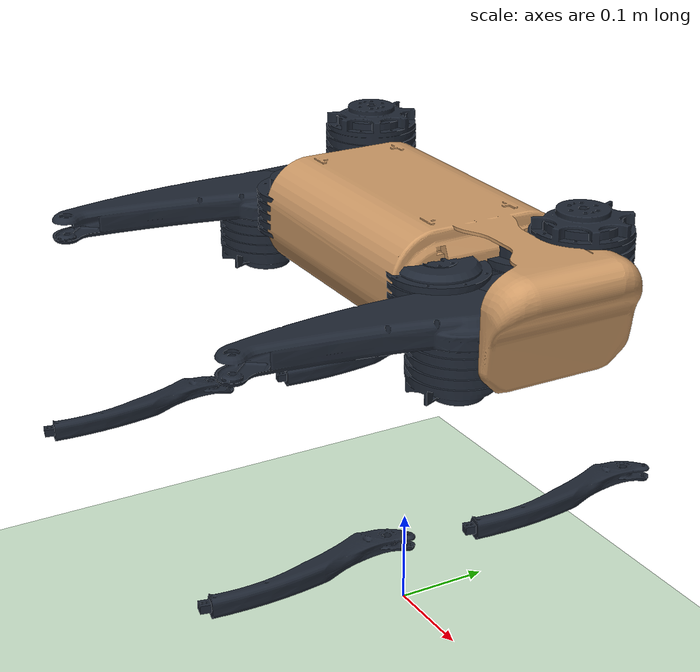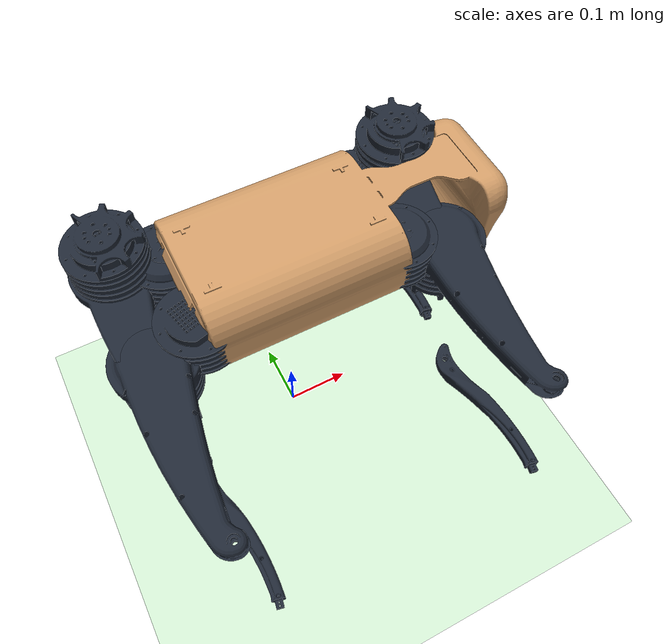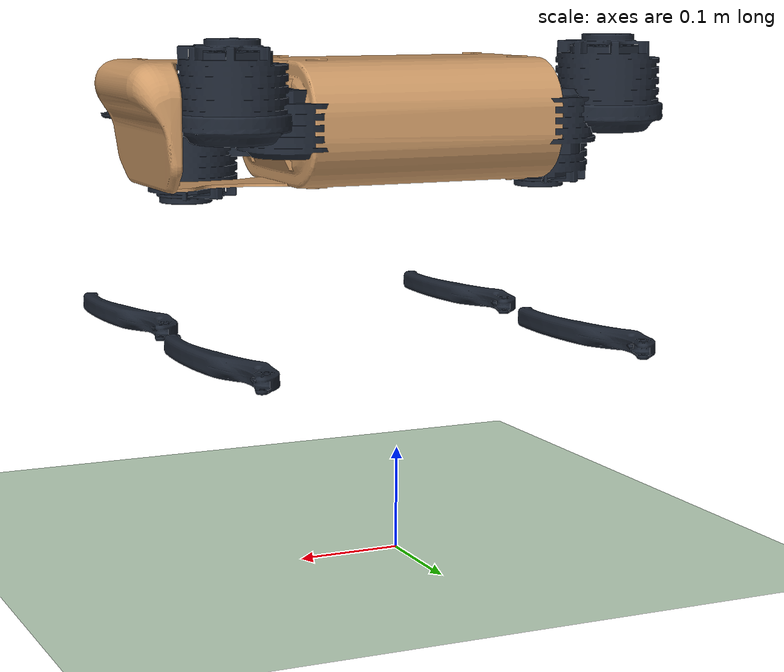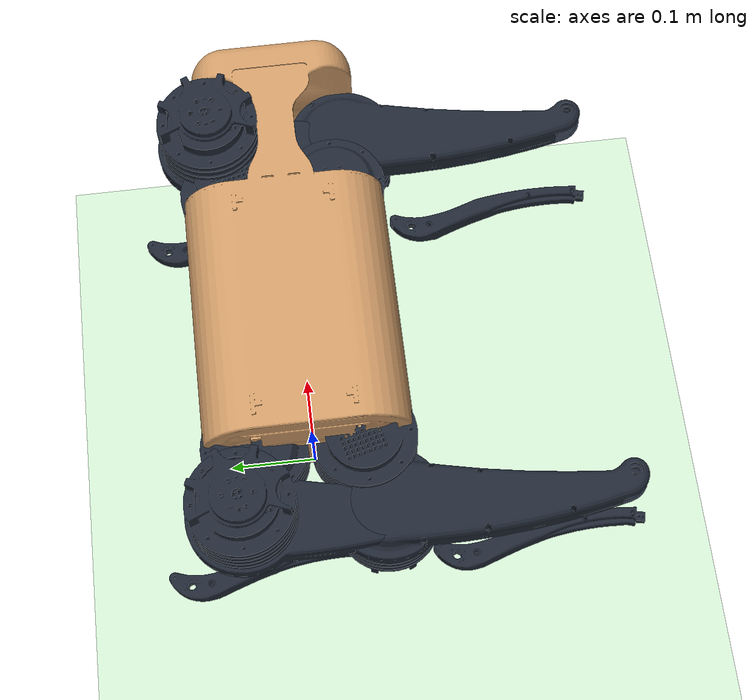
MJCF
<mujoco model="legs">
    <compiler angle="radian" coordinate="local" inertiafromgeom="true" meshdir="/home/mehtimans/sim2sim_leggedgym/resources/robots/iust/mjcf/assets" />
        <option timestep='0.005' iterations='30' solver='PGS' gravity='0 0 -9.81' integrator="RK4">
        </option>
        <size njmax="500" nconmax="100" />
        <default>
            <joint armature="0.0" damping="0.0" limited="true"/>
            <geom conaffinity="0" condim="3" density="1" friction="1 0.5 0.5" margin="0.01" rgba="0.8 0.6 0.4 1"/>
        </default>
    <asset>
        <mesh name="trunk" file="trunk.obj" />
        <mesh name="hip" file="hip.obj" />
        <mesh name="thigh_mirror" file="thigh_mirror.obj" />
        <mesh name="calf" file="calf.obj" />
        <mesh name="thigh" file="thigh.obj" />

        <texture builtin="gradient" height="100" rgb1="1 1 1" rgb2="0 0 0" type="skybox" width="100"/>
        <texture builtin="flat" height="1278" mark="cross" markrgb="1 1 1" name="texgeom" random="0.01" rgb1="0.8 0.6 0.4" rgb2="0.8 0.6 0.4" type="cube" width="127"/>
        <texture builtin="checker" height="100" name="texplane" rgb1="0 0 0" rgb2="0.8 0.8 0.8" type="2d" width="100"/>
        <material name="MatPlane" reflectance="0.5" shininess="1" specular="1" texrepeat="60 60" texture="texplane"/>
        <material name="geom" texture="texgeom" texuniform="true"/>

    </asset>
    <worldbody>

        <light cutoff="100" diffuse="1 1 1" dir="-0 0 -1.3" directional="true" exponent="1" pos="0 0 1.3" specular=".1 .1 .1"/>
        <geom conaffinity="1" group="1" condim="3" material="MatPlane" name="floor" pos="0 0 0" rgba="0.8 0.9 0.8 1" size="40 40 40" type="plane"/>

        <body name="base" pos="0.0 0.0 0.42">
            <joint type="free" name="floating_base"/>
            <geom type="mesh" mesh="trunk" group="1"/>

            <inertial pos="0 0 0" mass="4.713" diaginertia="0.01683993 0.056579028 0.064713601" />

            <site name='imu' size='0.01' pos='0.0 0 0.0'/>
            <body name="FR_hip" pos="0.13 -0.05 0">
                <inertial pos="-0.003311 -0.000635 3.1e-05" quat="0.475134 0.521822 -0.477036 0.523818" mass="0.696" diaginertia="0.000469246 0.00080749 0.000552929" />
                <joint name="FR_hip_joint" pos="0 0 0" axis="1 0 0" limited="true" range="-0.802851 0.802851" />
                <geom quat="0 1 0 0" type="mesh" group="1" mesh="hip" rgba="0.12 0.15 0.2 1"/>

                <body name="FR_thigh" pos="0.06 -0.015 0">
                    <inertial pos="-0.003237 0.022327 -0.027326" quat="0.999125 -0.00256393 -0.0409531 -0.00806091" mass="1.013" diaginertia="0.005529065 0.005139339 0.001367788" />
                    <joint name="FR_thigh_joint" pos="0 0 0" axis="0 1 0" limited="true" range="-1.0472 4.18879" />
                    <geom type="mesh" group="1" rgba="0.12 0.15 0.2 1" mesh="thigh_mirror" />

                    <body name="FR_calf" pos="0 -0.07125 -0.21183">
                        <inertial pos="0.006435 0.0 -0.107388" quat="0.706906 0.0168526 0.0168526 0.706906" mass="0.166" diaginertia="0.002997972 0.003014022 3.2426e-05" />
                        <joint name="FR_calf_joint" pos="0 0 0" axis="0 1 0" limited="true" range="-2.69653 -0.916298" />
                        <geom type="mesh" group="1" rgba="0.12 0.15 0.2 1" mesh="calf" />
                    </body>
                </body>
            </body>
            <body name="FL_hip" pos="0.13 0.05 0">
                <inertial pos="-0.003311 0.000635 3.1e-05" quat="0.415693 0.415059 0.572494 0.571993" mass="0.696" diaginertia="0.000469246 0.00080749 0.000552929" />
                <joint name="FL_hip_joint" pos="0 0 0" axis="1 0 0" limited="true" range="-0.802851 0.802851" />
                <geom type="mesh" group="1" rgba="0.12 0.15 0.2 1" mesh="hip" />
                <body name="FL_thigh" pos="0.06 0.015 0">
                    <inertial pos="-0.003237 -0.022327 -0.027326" quat="0.999125 0.00256393 -0.0409531 0.00806091" mass="1.013" diaginertia="0.005529065 0.005139339 0.001367788" />
                    <joint name="FL_thigh_joint" pos="0 0 0" axis="0 1 0" limited="true" range="-1.0472 4.18879" />
                    <geom type="mesh" group="1" rgba="0.12 0.15 0.2 1" mesh="thigh" />
                    <body name="FL_calf" pos="0 0.07125 -0.21183">
                        <inertial pos="0.006435 0.0 -0.107388" quat="0.706906 0.0168526 0.0168526 0.706906" mass="0.166" diaginertia="0.002997972 0.003014022 3.2426e-05" />
                        <joint name="FL_calf_joint" pos="0 0 0" axis="0 1 0" limited="true" range="-2.69653 -0.916298" />
                        <geom type="mesh" group="1" rgba="0.12 0.15 0.2 1" mesh="calf" />
                    </body>
                </body>
            </body>
            <body name="RR_hip" pos="-0.13 -0.05 0">
                <inertial pos="0.003311 -0.000635 3.1e-05" quat="0.415059 0.415693 0.571993 0.572494" mass="0.696" diaginertia="0.000469246 0.00080749 0.000552929" />
                <joint name="RR_hip_joint" pos="0 0 0" axis="1 0 0" limited="true" range="-0.802851 0.802851" />
                <geom quat="0 0 0 -1" type="mesh" group="1" rgba="0.12 0.15 0.2 1" mesh="hip" />
                <body name="RR_thigh" pos="-0.06 -0.015 0">
                    <inertial pos="-0.003237 0.022327 -0.027326" quat="0.999125 -0.00256393 -0.0409531 -0.00806091" mass="1.013" diaginertia="0.00555739 0.005139339 0.001367788" />
                    <joint name="RR_thigh_joint" pos="0 0 0" axis="0 1 0" limited="true" range="-1.0472 4.18879" />
                    <geom type="mesh" group="1" rgba="0.12 0.15 0.2 1" mesh="thigh_mirror" />
                    <body name="RR_calf" pos="0 -0.07125 -0.21183">
                        <inertial pos="0.006435 0.0 -0.107388" quat="0.706906 0.0168526 0.0168526 0.706906" mass="0.166" diaginertia="0.002997972 0.003014022 3.2426e-05" />
                        <joint name="RR_calf_joint" pos="0 0 0" axis="0 1 0" limited="true" range="-2.69653 -0.916298" />
                        <geom type="mesh" group="1" rgba="0.12 0.15 0.2 1" mesh="calf" />
                    </body>
                </body>
            </body>
            <body name="RL_hip" pos="-0.13 0.05 0">
                <inertial pos="0.003311 0.000635 3.1e-05" quat="0.572494 0.571993 0.415693 0.415059" mass="0.696" diaginertia="0.000469246 0.00080749 0.000552929" />
                <joint name="RL_hip_joint" pos="0 0 0" axis="1 0 0" limited="true" range="-0.802851 0.802851" />
                <geom quat="0 0 1 0" type="mesh" group="1" rgba="0.12 0.15 0.2 1" mesh="hip" />
                <body name="RL_thigh" pos="-0.06 0.015 0">
                    <inertial pos="-0.003237 -0.022327 -0.027326" quat="0.999125 0.00256393 -0.0409531 0.00806091" mass="1.013" diaginertia="0.005529065 0.005139339 0.001367788" />
                    <joint name="RL_thigh_joint" pos="0 0 0" axis="0 1 0" limited="true" range="-1.0472 4.18879" />
                    <geom type="mesh" group="1" rgba="0.12 0.15 0.2 1" mesh="thigh" />
                    <body name="RL_calf" pos="0 0.07125 -0.21183">
                        <inertial pos="0.006435 0.0 -0.107388" quat="0.706906 0.0168526 0.0168526 0.706906" mass="0.166" diaginertia="0.002997972 0.003014022 3.2426e-05" />
                        <joint name="RL_calf_joint" pos="0 0 0" axis="0 1 0" limited="true" range="-2.69653 -0.916298" />
                        <geom type="mesh" group="1" rgba="0.12 0.15 0.2 1" mesh="calf" />
                    </body>
                </body>
            </body>
    </body>
    </worldbody>

    <actuator>
      <motor name = "RR_hip_joint" ctrllimited="true" ctrlrange="-1.0 1.0" joint="RR_hip_joint" gear="150"/>
      <motor name = "RR_thigh_joint" ctrllimited="true" ctrlrange="-1.0 1.0" joint="RR_thigh_joint" gear="150"/>
      <motor name = "RR_calf_joint" ctrllimited="true" ctrlrange="-1.0 1.0" joint="RR_calf_joint" gear="150"/>

      <motor name="RL_hip_joint" ctrllimited="true" ctrlrange="-1.0 1.0" joint="RL_hip_joint" gear="150"/>
      <motor name="RL_thigh_joint" ctrllimited="true" ctrlrange="-1.0 1.0" joint="RL_thigh_joint" gear="150"/>
      <motor name="RL_calf_joint" ctrllimited="true" ctrlrange="-1.0 1.0" joint="RL_calf_joint" gear="150"/>

      <motor name="FL_hip_joint" ctrllimited="true" ctrlrange="-1.0 1.0" joint="FL_hip_joint" gear="150"/>
      <motor name="FL_thigh_joint" ctrllimited="true" ctrlrange="-1.0 1.0" joint="FL_thigh_joint" gear="150"/>
      <motor name="FL_calf_joint" ctrllimited="true" ctrlrange="-1.0 1.0" joint="FL_calf_joint" gear="150"/>

      <motor name="FR_hip_joint" ctrllimited="true" ctrlrange="-1.0 1.0" joint="FR_hip_joint" gear="150"/>
      <motor name="FR_thigh_joint" ctrllimited="true" ctrlrange="-1.0 1.0" joint="FR_thigh_joint" gear="150"/>
      <motor name="FR_calf_joint" ctrllimited="true" ctrlrange="-1.0 1.0" joint="FR_calf_joint" gear="150"/>
    </actuator>

    <sensor>
        <actuatorpos name='RR_hip_joint_p'  actuator='RR_hip_joint' user='13'/>
        <actuatorpos name='RR_thigh_joint_p'  actuator='RR_thigh_joint' user='13'/>
        <actuatorpos name='RR_calf_joint_p'  actuator='RR_calf_joint' user='13'/>
        <actuatorpos name='RL_hip_joint_p'  actuator='RL_hip_joint' user='13'/>
        <actuatorpos name='RL_thigh_joint_p'  actuator='RL_thigh_joint' user='13'/>
        <actuatorpos name='RL_calf_joint_p'  actuator='RL_calf_joint' user='13'/>
        <actuatorpos name='FL_hip_joint_p'  actuator='FL_hip_joint' user='13'/>
        <actuatorpos name='FL_thigh_joint_p'  actuator='FL_thigh_joint' user='13'/>
        <actuatorpos name='FL_calf_joint_p'  actuator='FL_calf_joint' user='13'/>
        <actuatorpos name='FR_hip_joint_p'  actuator='FR_hip_joint' user='13'/>
        <actuatorpos name='FR_thigh_joint_p'  actuator='FR_thigh_joint' user='13'/>
        <actuatorpos name='FR_calf_joint_p'  actuator='FR_calf_joint' user='13'/>

        <actuatorvel name='RR_hip_joint_v'  actuator='RR_hip_joint' user='13'/>
        <actuatorvel name='RR_thigh_joint_v'  actuator='RR_thigh_joint' user='13'/>
        <actuatorvel name='RR_calf_joint_v'  actuator='RR_calf_joint' user='13'/>
        <actuatorvel name='RL_hip_joint_v'  actuator='RL_hip_joint' user='13'/>
        <actuatorvel name='RL_thigh_joint_v'  actuator='RL_thigh_joint' user='13'/>
        <actuatorvel name='RL_calf_joint_v'  actuator='RL_calf_joint' user='13'/>
        <actuatorvel name='FL_hip_joint_v'  actuator='FL_hip_joint' user='13'/>
        <actuatorvel name='FL_thigh_joint_v'  actuator='FL_thigh_joint' user='13'/>
        <actuatorvel name='FL_calf_joint_v'  actuator='FL_calf_joint' user='13'/>
        <actuatorvel name='FR_hip_joint_v'  actuator='FR_hip_joint' user='13'/>
        <actuatorvel name='FR_thigh_joint_v'  actuator='FR_thigh_joint' user='13'/>
        <actuatorvel name='FR_calf_joint_v'  actuator='FR_calf_joint' user='13'/>

        <actuatorfrc name='RR_hip_joint_f'  actuator='RR_hip_joint' user='13'/>
        <actuatorfrc name='RR_thigh_joint_f'  actuator='RR_thigh_joint' user='13'/>
        <actuatorfrc name='RR_calf_joint_f'  actuator='RR_calf_joint' user='13'/>
        <actuatorfrc name='RL_hip_joint_f'  actuator='RL_hip_joint' user='13'/>
        <actuatorfrc name='RL_thigh_joint_f'  actuator='RL_thigh_joint' user='13'/>
        <actuatorfrc name='RL_calf_joint_f'  actuator='RL_calf_joint' user='13'/>
        <actuatorfrc name='FL_hip_joint_f'  actuator='FL_hip_joint' user='13'/>
        <actuatorfrc name='FL_thigh_joint_f'  actuator='FL_thigh_joint' user='13'/>
        <actuatorfrc name='FL_calf_joint_f'  actuator='FL_calf_joint' user='13'/>
        <actuatorfrc name='FR_hip_joint_f'  actuator='FR_hip_joint' user='13'/>
        <actuatorfrc name='FR_thigh_joint_f'  actuator='FR_thigh_joint' user='13'/>
        <actuatorfrc name='FR_calf_joint_f'  actuator='FR_calf_joint' user='13'/>

        <framequat     name='orientation' objtype='site' noise='0.001' objname='imu'/>
        <framepos     name='position' objtype='site' noise='0.001' objname='imu'/>
        <gyro          name='angular-velocity'    site='imu' noise='0.005' cutoff='34.9'/>
        <velocimeter   name='linear-velocity'     site='imu' noise='0.001' cutoff='30'/>
        <accelerometer name='linear-acceleration' site='imu' noise='0.005' cutoff='157'/>
        <magnetometer  name='magnetometer'        site='imu'/>

    </sensor>
</mujoco>
